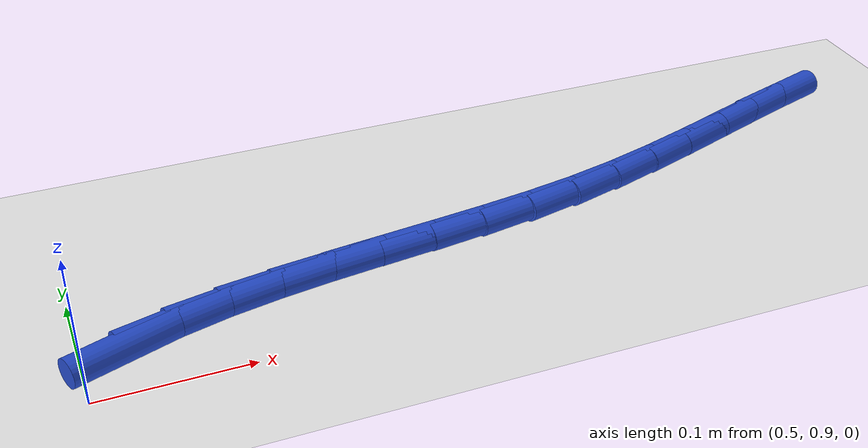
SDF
<sdf version="1.6">
 <world name="default">
  <model name="ground_plane">
   <static>1</static>
   <link name="link">
    <collision name="collision">
     <geometry><plane><normal>0 0 1</normal><size>100 100</size></plane></geometry>
     <surface><friction><ode><mu>100</mu><mu2>50</mu2></ode></friction></surface>
    </collision>
    <visual name="visual">
     <cast_shadows>0</cast_shadows>
     <geometry><plane><normal>0 0 1</normal><size>100 100</size></plane></geometry>
     <material>
      <script><uri>file://media/materials/scripts/gazebo.material</uri><name>Gazebo/WhiteGlow</name></script>
     </material>
    </visual>
   </link>
  </model>
  <model name="line">
   <link name="link_31">
    <pose>0.5287414357863561 0.932954353487616 0.01 0 1.57 0.35197722542888493</pose>
    <collision name="collision">
     <geometry><cylinder><radius>0.01</radius><length>0.08</length></cylinder></geometry>
    </collision>
    <visual name="visual">
     <material>
      <script><name>Gazebo/Blue</name><uri>file://media/materials/scripts/gazebo.material</uri></script>
     </material>
     <geometry><cylinder><radius>0.01</radius><length>0.08</length></cylinder></geometry>
    </visual>
   </link>
   <link name="link_32">
    <pose>0.5604476944106817 0.944599136411219 0.01 0 1.57 0.26506040477492726</pose>
    <collision name="collision">
     <geometry><cylinder><radius>0.01</radius><length>0.08</length></cylinder></geometry>
    </collision>
    <visual name="visual">
     <material>
      <script><name>Gazebo/Blue</name><uri>file://media/materials/scripts/gazebo.material</uri></script>
     </material>
     <geometry><cylinder><radius>0.01</radius><length>0.08</length></cylinder></geometry>
    </visual>
   </link>
   <link name="link_33">
    <pose>0.5938508961949553 0.953666348987455 0.01 0 1.57 0.1999299701820391</pose>
    <collision name="collision">
     <geometry><cylinder><radius>0.01</radius><length>0.08</length></cylinder></geometry>
    </collision>
    <visual name="visual">
     <material>
      <script><name>Gazebo/Blue</name><uri>file://media/materials/scripts/gazebo.material</uri></script>
     </material>
     <geometry><cylinder><radius>0.01</radius><length>0.08</length></cylinder></geometry>
    </visual>
   </link>
   <link name="link_34">
    <pose>0.6286545424816737 0.9607188599533883 0.01 0 1.57 0.15472805098623982</pose>
    <collision name="collision">
     <geometry><cylinder><radius>0.01</radius><length>0.08</length></cylinder></geometry>
    </collision>
    <visual name="visual">
     <material>
      <script><name>Gazebo/Blue</name><uri>file://media/materials/scripts/gazebo.material</uri></script>
     </material>
     <geometry><cylinder><radius>0.01</radius><length>0.08</length></cylinder></geometry>
    </visual>
   </link>
   <link name="link_35">
    <pose>0.6645621346133327 0.966319538046083 0.01 0 1.57 0.12763436382105578</pose>
    <collision name="collision">
     <geometry><cylinder><radius>0.01</radius><length>0.08</length></cylinder></geometry>
    </collision>
    <visual name="visual">
     <material>
      <script><name>Gazebo/Blue</name><uri>file://media/materials/scripts/gazebo.material</uri></script>
     </material>
     <geometry><cylinder><radius>0.01</radius><length>0.08</length></cylinder></geometry>
    </visual>
   </link>
   <link name="link_36">
    <pose>0.7012771739324284 0.9710312520026025 0.01 0 1.57 0.11727011874736659</pose>
    <collision name="collision">
     <geometry><cylinder><radius>0.01</radius><length>0.08</length></cylinder></geometry>
    </collision>
    <visual name="visual">
     <material>
      <script><name>Gazebo/Blue</name><uri>file://media/materials/scripts/gazebo.material</uri></script>
     </material>
     <geometry><cylinder><radius>0.01</radius><length>0.08</length></cylinder></geometry>
    </visual>
   </link>
   <link name="link_37">
    <pose>0.7385031617814575 0.975416870560012 0.01 0 1.57 0.12283828097464813</pose>
    <collision name="collision">
     <geometry><cylinder><radius>0.01</radius><length>0.08</length></cylinder></geometry>
    </collision>
    <visual name="visual">
     <material>
      <script><name>Gazebo/Blue</name><uri>file://media/materials/scripts/gazebo.material</uri></script>
     </material>
     <geometry><cylinder><radius>0.01</radius><length>0.08</length></cylinder></geometry>
    </visual>
   </link>
   <link name="link_38">
    <pose>0.7759435995029157 0.9800392624553746 0.01 0 1.57 0.14412927345510365</pose>
    <collision name="collision">
     <geometry><cylinder><radius>0.01</radius><length>0.08</length></cylinder></geometry>
    </collision>
    <visual name="visual">
     <material>
      <script><name>Gazebo/Blue</name><uri>file://media/materials/scripts/gazebo.material</uri></script>
     </material>
     <geometry><cylinder><radius>0.01</radius><length>0.08</length></cylinder></geometry>
    </visual>
   </link>
   <link name="link_39">
    <pose>0.8133019884392998 0.9854612964257548 0.01 0 1.57 0.18144815492154917</pose>
    <collision name="collision">
     <geometry><cylinder><radius>0.01</radius><length>0.08</length></cylinder></geometry>
    </collision>
    <visual name="visual">
     <material>
      <script><name>Gazebo/Blue</name><uri>file://media/materials/scripts/gazebo.material</uri></script>
     </material>
     <geometry><cylinder><radius>0.01</radius><length>0.08</length></cylinder></geometry>
    </visual>
   </link>
   <link name="link_40">
    <pose>0.8502818299331054 0.9922458412082165 0.01 0 1.57 0.23360202607498107</pose>
    <collision name="collision">
     <geometry><cylinder><radius>0.01</radius><length>0.08</length></cylinder></geometry>
    </collision>
    <visual name="visual">
     <material>
      <script><name>Gazebo/Blue</name><uri>file://media/materials/scripts/gazebo.material</uri></script>
     </material>
     <geometry><cylinder><radius>0.01</radius><length>0.08</length></cylinder></geometry>
    </visual>
   </link>
   <link name="link_41">
    <pose>0.8866109141577839 1.0008902046198174 0.01 0 1.57 0.2827558952058957</pose>
    <collision name="collision">
     <geometry><cylinder><radius>0.01</radius><length>0.08</length></cylinder></geometry>
    </collision>
    <visual name="visual">
     <material>
      <script><name>Gazebo/Blue</name><uri>file://media/materials/scripts/gazebo.material</uri></script>
     </material>
     <geometry><cylinder><radius>0.01</radius><length>0.08</length></cylinder></geometry>
    </visual>
   </link>
   <link name="link_42">
    <pose>0.9222560402752632 1.011246556422014 0.01 0 1.57 0.31830524650128084</pose>
    <collision name="collision">
     <geometry><cylinder><radius>0.01</radius><length>0.08</length></cylinder></geometry>
    </collision>
    <visual name="visual">
     <material>
      <script><name>Gazebo/Blue</name><uri>file://media/materials/scripts/gazebo.material</uri></script>
     </material>
     <geometry><cylinder><radius>0.01</radius><length>0.08</length></cylinder></geometry>
    </visual>
   </link>
   <link name="link_43">
    <pose>0.9573198431801015 1.0228004157285768 0.01 0 1.57 0.3399505594564648</pose>
    <collision name="collision">
     <geometry><cylinder><radius>0.01</radius><length>0.08</length></cylinder></geometry>
    </collision>
    <visual name="visual">
     <material>
      <script><name>Gazebo/Blue</name><uri>file://media/materials/scripts/gazebo.material</uri></script>
     </material>
     <geometry><cylinder><radius>0.01</radius><length>0.08</length></cylinder></geometry>
    </visual>
   </link>
   <link name="link_44">
    <pose>0.9919065232600868 1.0350330760412396 0.01 0 1.57 0.3475155464305909</pose>
    <collision name="collision">
     <geometry><cylinder><radius>0.01</radius><length>0.08</length></cylinder></geometry>
    </collision>
    <visual name="visual">
     <material>
      <script><name>Gazebo/Blue</name><uri>file://media/materials/scripts/gazebo.material</uri></script>
     </material>
     <geometry><cylinder><radius>0.01</radius><length>0.08</length></cylinder></geometry>
    </visual>
   </link>
   <link name="link_45">
    <pose>1.0261202809030063 1.0474258308617361 0.01 0 1.57 0.34069451706028403</pose>
    <collision name="collision">
     <geometry><cylinder><radius>0.01</radius><length>0.08</length></cylinder></geometry>
    </collision>
    <visual name="visual">
     <material>
      <script><name>Gazebo/Blue</name><uri>file://media/materials/scripts/gazebo.material</uri></script>
     </material>
     <geometry><cylinder><radius>0.01</radius><length>0.08</length></cylinder></geometry>
    </visual>
   </link>
   <link name="link_46">
    <pose>1.060065316496648 1.0594599736917993 0.01 0 1.57 0.3189946021658939</pose>
    <collision name="collision">
     <geometry><cylinder><radius>0.01</radius><length>0.08</length></cylinder></geometry>
    </collision>
    <visual name="visual">
     <material>
      <script><name>Gazebo/Blue</name><uri>file://media/materials/scripts/gazebo.material</uri></script>
     </material>
     <geometry><cylinder><radius>0.01</radius><length>0.08</length></cylinder></geometry>
    </visual>
   </link>
  </model>
 </world>
</sdf>
